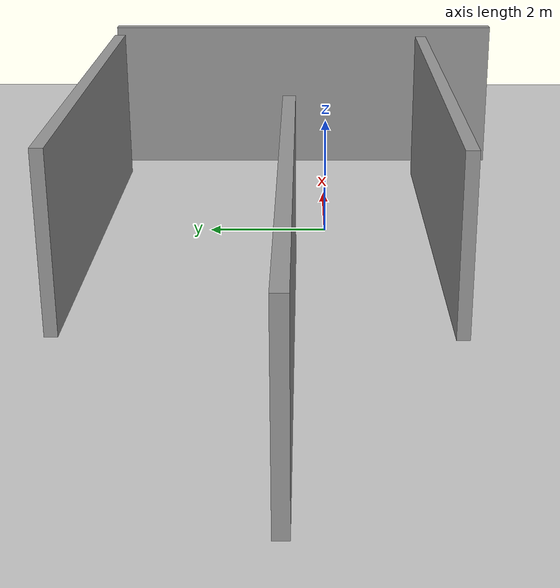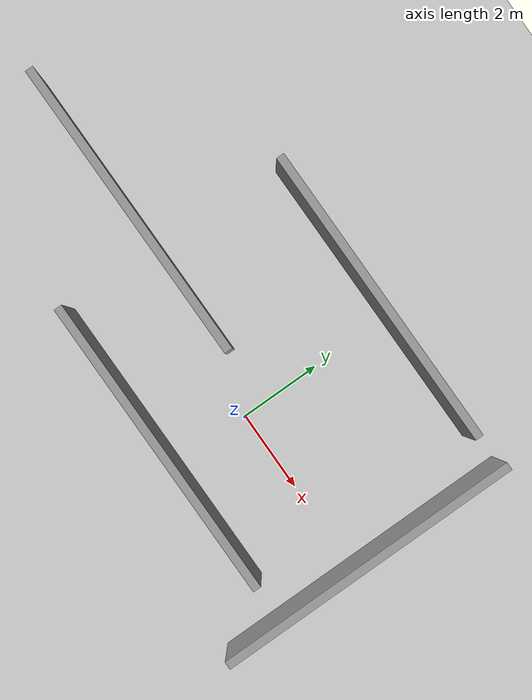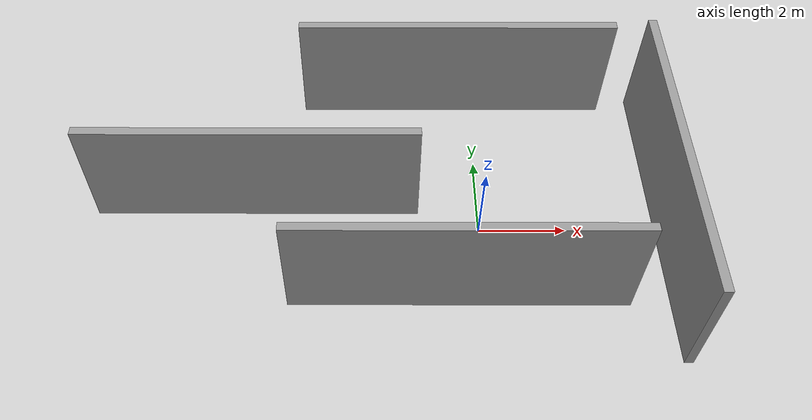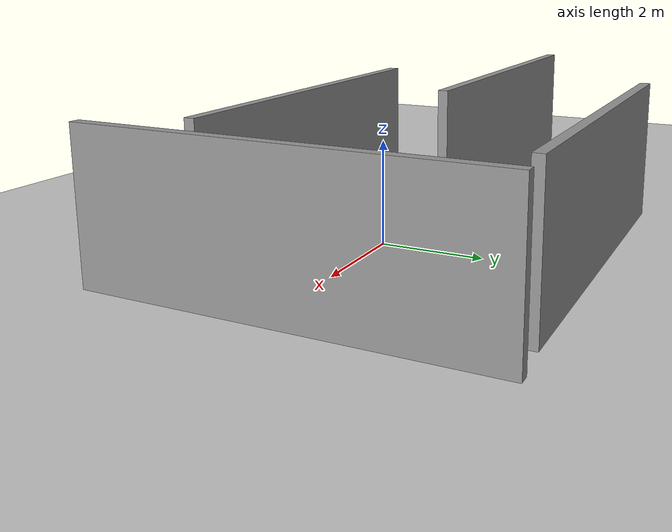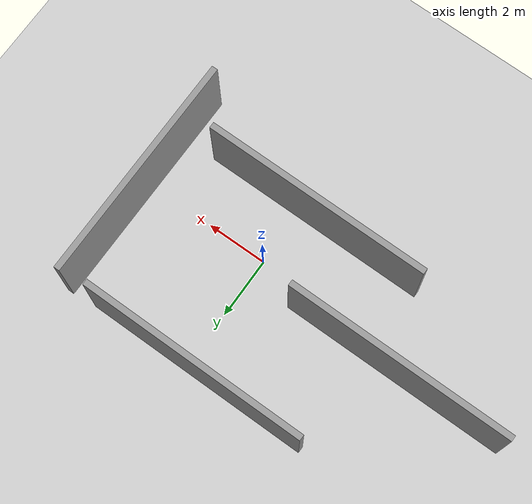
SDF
<?xml version="1.0"?>
<sdf version="1.6">
  <world name="default">

    <include>
      <uri>model://ground_plane</uri>
    </include>

    <include>
      <uri>model://sun</uri>
    </include>

    <scene>
      <shadows>false</shadows>
    </scene>

    <gui fullscreen='0'>
      <camera name='user_camera'>
        <pose frame=''>0.319654 -0.235002 9.29441 0 1.5138 0.009599</pose>
        <view_controller>orbit</view_controller>
        <projection_type>perspective</projection_type>
      </camera>
    </gui>

    <physics type="ode">
      <real_time_update_rate>1000.0</real_time_update_rate>
      <max_step_size>0.001</max_step_size>
      <real_time_factor>1</real_time_factor>
      <ode>
        <solver>
          <type>quick</type>
          <iters>150</iters>
          <precon_iters>0</precon_iters>
          <sor>1.400000</sor>
          <use_dynamic_moi_rescaling>1</use_dynamic_moi_rescaling>
        </solver>
        <constraints>
          <cfm>0.00001</cfm>
          <erp>0.2</erp>
          <contact_max_correcting_vel>2000.000000</contact_max_correcting_vel>
          <contact_surface_layer>0.01000</contact_surface_layer>
        </constraints>
      </ode>
    </physics>

    <model name="tb3_4walls">
      <static>1</static>
      <include>
        <uri>model://tb3_4walls</uri>
      </include>
    </model>

  </world>
</sdf>

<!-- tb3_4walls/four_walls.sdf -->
<sdf version='1.7'>
  <model name='grey_wall'>
    <static>1</static>
    <link name='link'>
      <pose>0 0 1.4 0 -0 0</pose>
      <collision name='collision'>
        <geometry>
          <box>
            <size>7.5 0.2 2.8</size>
          </box>
        </geometry>
        <max_contacts>10</max_contacts>
        <surface>
          <contact>
            <ode/>
          </contact>
          <bounce/>
          <friction>
            <torsional>
              <ode/>
            </torsional>
            <ode/>
          </friction>
        </surface>
      </collision>
      <visual name='visual'>
        <cast_shadows>0</cast_shadows>
        <geometry>
          <box>
            <size>7.5 0.2 2.8</size>
          </box>
        </geometry>
        <material>
          <script>
            <uri>model://grey_wall/materials/scripts</uri>
            <uri>model://grey_wall/materials/textures</uri>
            <name>vrc/grey_wall</name>
          </script>
        </material>
      </visual>
      <self_collide>0</self_collide>
      <enable_wind>0</enable_wind>
      <kinematic>0</kinematic>
    </link>
    <pose>-0.561507 -1.88543 0 0 -0 0</pose>
  </model>
  <model name='grey_wall_clone'>
    <static>1</static>
    <link name='link'>
      <pose>0 0 1.4 0 -0 0</pose>
      <collision name='collision'>
        <geometry>
          <box>
            <size>7.5 0.2 2.8</size>
          </box>
        </geometry>
        <max_contacts>10</max_contacts>
        <surface>
          <contact>
            <ode/>
          </contact>
          <bounce/>
          <friction>
            <torsional>
              <ode/>
            </torsional>
            <ode/>
          </friction>
        </surface>
      </collision>
      <visual name='visual'>
        <cast_shadows>0</cast_shadows>
        <geometry>
          <box>
            <size>7.5 0.2 2.8</size>
          </box>
        </geometry>
        <material>
          <script>
            <uri>model://grey_wall/materials/scripts</uri>
            <uri>model://grey_wall/materials/textures</uri>
            <name>vrc/grey_wall</name>
          </script>
        </material>
      </visual>
      <self_collide>0</self_collide>
      <enable_wind>0</enable_wind>
      <kinematic>0</kinematic>
    </link>
    <pose>-0.458697 3.95598 0 0 -0 0</pose>
  </model>
  <model name='grey_wall_clone_0'>
    <static>1</static>
    <link name='link'>
      <pose>0 0 1.4 0 -0 0</pose>
      <collision name='collision'>
        <geometry>
          <box>
            <size>7.5 0.2 2.8</size>
          </box>
        </geometry>
        <max_contacts>10</max_contacts>
        <surface>
          <contact>
            <ode/>
          </contact>
          <bounce/>
          <friction>
            <torsional>
              <ode/>
            </torsional>
            <ode/>
          </friction>
        </surface>
      </collision>
      <visual name='visual'>
        <cast_shadows>0</cast_shadows>
        <geometry>
          <box>
            <size>7.5 0.2 2.8</size>
          </box>
        </geometry>
        <material>
          <script>
            <uri>model://grey_wall/materials/scripts</uri>
            <uri>model://grey_wall/materials/textures</uri>
            <name>vrc/grey_wall</name>
          </script>
        </material>
      </visual>
      <self_collide>0</self_collide>
      <enable_wind>0</enable_wind>
      <kinematic>0</kinematic>
    </link>
    <pose>-5.15209 0.598949 0 0 -0 0</pose>
  </model>
  <model name='grey_wall_clone_0_clone'>
    <static>1</static>
    <link name='link'>
      <pose>0 0 1.4 0 -0 0</pose>
      <collision name='collision'>
        <geometry>
          <box>
            <size>7.5 0.2 2.8</size>
          </box>
        </geometry>
        <max_contacts>10</max_contacts>
        <surface>
          <contact>
            <ode/>
          </contact>
          <bounce/>
          <friction>
            <torsional>
              <ode/>
            </torsional>
            <ode/>
          </friction>
        </surface>
      </collision>
      <visual name='visual'>
        <cast_shadows>0</cast_shadows>
        <geometry>
          <box>
            <size>7.5 0.2 2.8</size>
          </box>
        </geometry>
        <material>
          <script>
            <uri>model://grey_wall/materials/scripts</uri>
            <uri>model://grey_wall/materials/textures</uri>
            <name>vrc/grey_wall</name>
          </script>
        </material>
      </visual>
      <self_collide>0</self_collide>
      <enable_wind>0</enable_wind>
      <kinematic>0</kinematic>
    </link>
    <pose>4.16567 0.38171 0 0 0 -1.57053</pose>
  </model>
</sdf>
